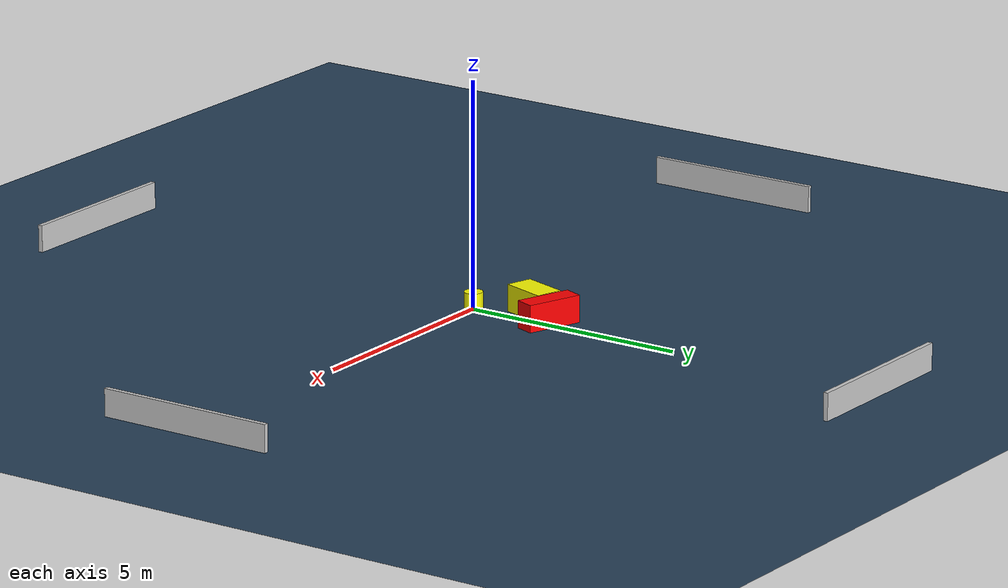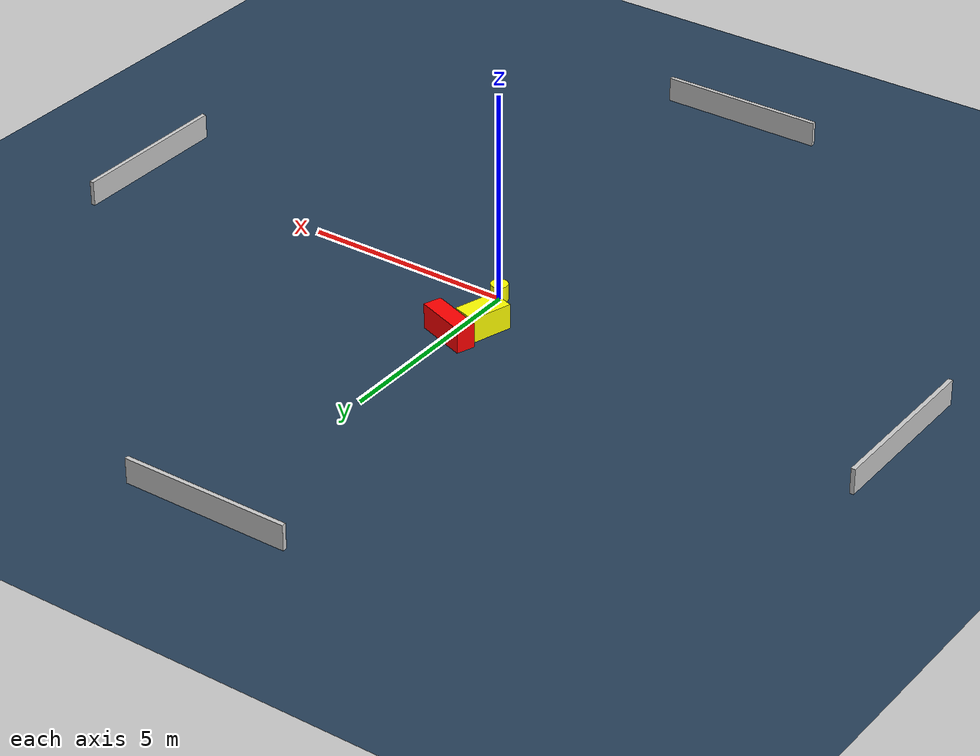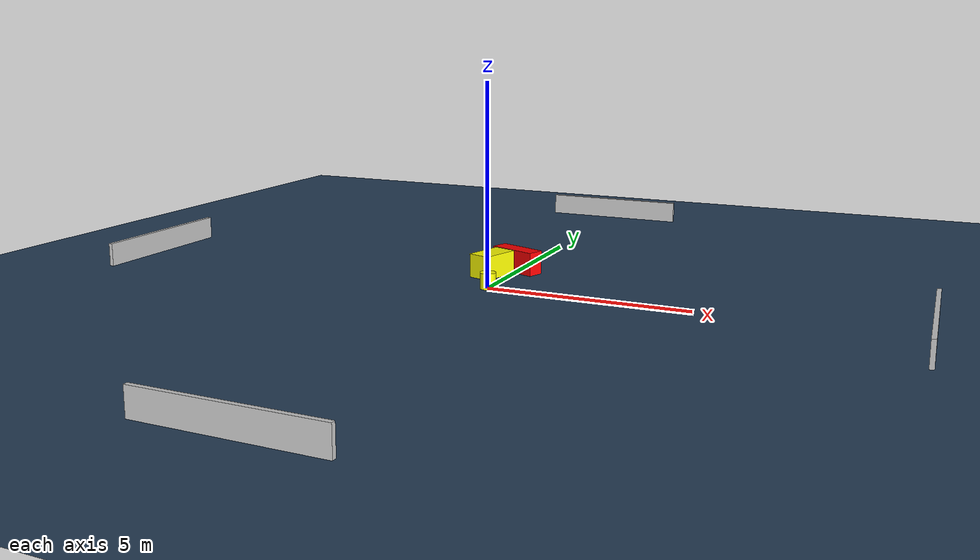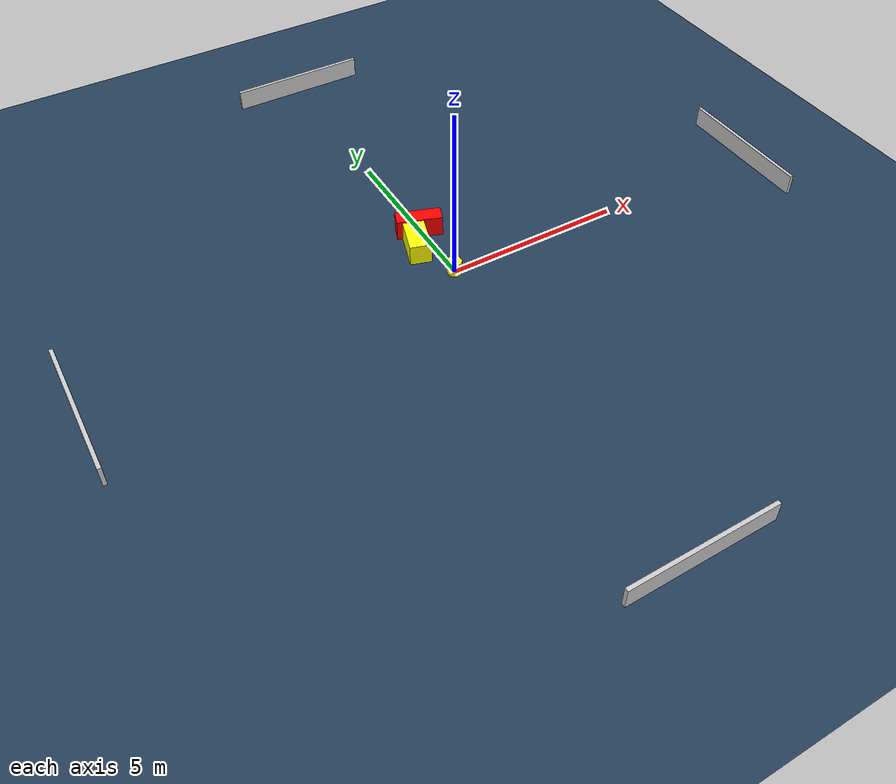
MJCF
<?xml version="1.0" ?>
<mujoco model="generated_environment">
  <option timestep="0.01" integrator="RK4" cone="elliptic"/>
  <default>
    <geom density="1"/>
  </default>
  <asset>
    <texture builtin="gradient" height="3072" name="skybox" rgb1="0.3 0.5 0.7" rgb2="0 0 0" type="skybox" width="512"/>
    <texture builtin="checker" height="300" name="groundplane" rgb1="0.2 0.3 0.4" rgb2="0.1 0.2 0.3" type="2d" width="300"/>
    <material name="groundplane" reflectance="0.2" texrepeat="5 5" texture="groundplane"/>
  </asset>
  <worldbody>
    <light dir="0 0 -1" directional="true" pos="0 0 1.5"/>
    <geom condim="3" friction="0.5 0.005 0.001" material="groundplane" name="floor" pos="0 0 0" size="0 0 0.05" type="plane"/>
    <body name="walls">
      <geom name="wall_1" condim="4" pos="-10.0 0.0 0.3" rgba="0.800000011920929 0.800000011920929 0.800000011920929 1.0" size="0.05 2.0 0.3" type="box"/>
      <geom name="wall_2" condim="4" pos="10.0 0.0 0.3" rgba="0.800000011920929 0.800000011920929 0.800000011920929 1.0" size="0.05 2.0 0.3" type="box"/>
      <geom name="wall_3" condim="4" pos="0.0 -10.0 0.3" rgba="0.800000011920929 0.800000011920929 0.800000011920929 1.0" size="2.0 0.05 0.3" type="box"/>
      <geom name="wall_4" condim="4" pos="0.0 10.0 0.3" rgba="0.800000011920929 0.800000011920929 0.800000011920929 1.0" size="2.0 0.05 0.3" type="box"/>
    </body>
    <body name="robot">
      <joint name="joint_x" type="slide" pos="0 0 0" axis="1 0 0"/>
      <joint name="joint_y" type="slide" pos="0 0 0" axis="0 1 0"/>
      <geom name="robot" type="cylinder" pos="0.0 0.0 0.2" size="0.2 0.2 0.0" mass="5.0" friction="1.0 0.005 0.0001" condim="4" rgba="1.0 1.0 0.0 1.0"/>
    </body>
    <body name="obstacle_1_movable">
      <geom name="obstacle_1_movable" condim="4" pos="-0.4422174467485231 1.2345575201086492 0.3" euler="0 0 342.69306954016025" friction="0.0 0.005 0.001" rgba="1.0 1.0 0.0 1.0" size="0.29892525623132143 0.5097900352706747 0.3" type="box" mass="0.1"/>
      <joint type="free"/>
    </body>
    <body name="obstacle_2_static">
      <geom name="obstacle_2_static" condim="4" pos="-0.02334966957897005 1.9003295945282372 0.3" euler="0 0 340.205088298716" friction="0.0 0.005 0.001" rgba="1.0 0.0 0.0 1.0" size="0.6338754029687841 0.2193783729576034 0.3" type="box"/>
    </body>
  </worldbody>
  <actuator>
    <motor name="actuator_x" joint="joint_x" gear="1" ctrlrange="-1 1"/>
    <motor name="actuator_y" joint="joint_y" gear="1" ctrlrange="-1 1"/>
  </actuator>
</mujoco>
